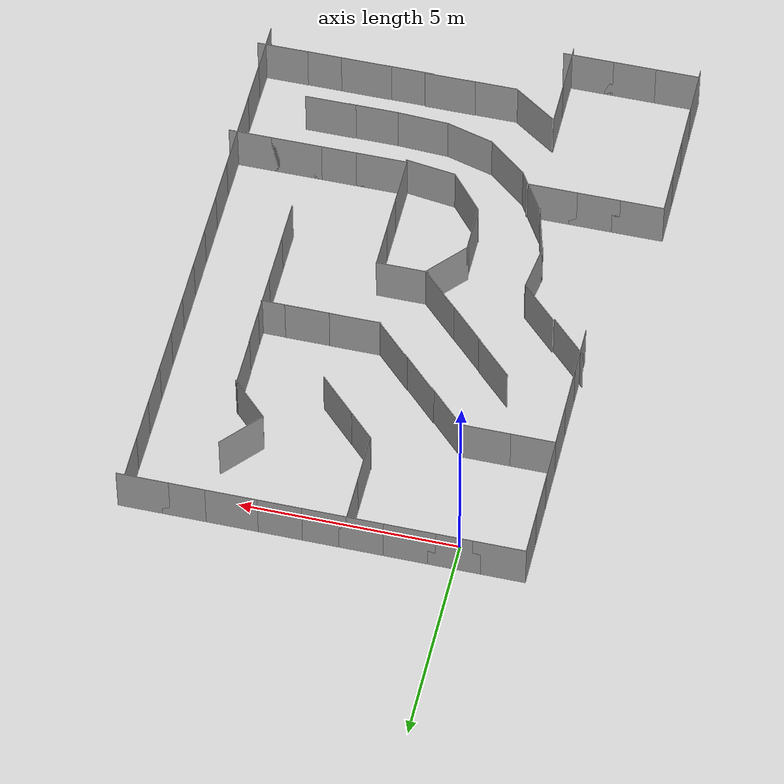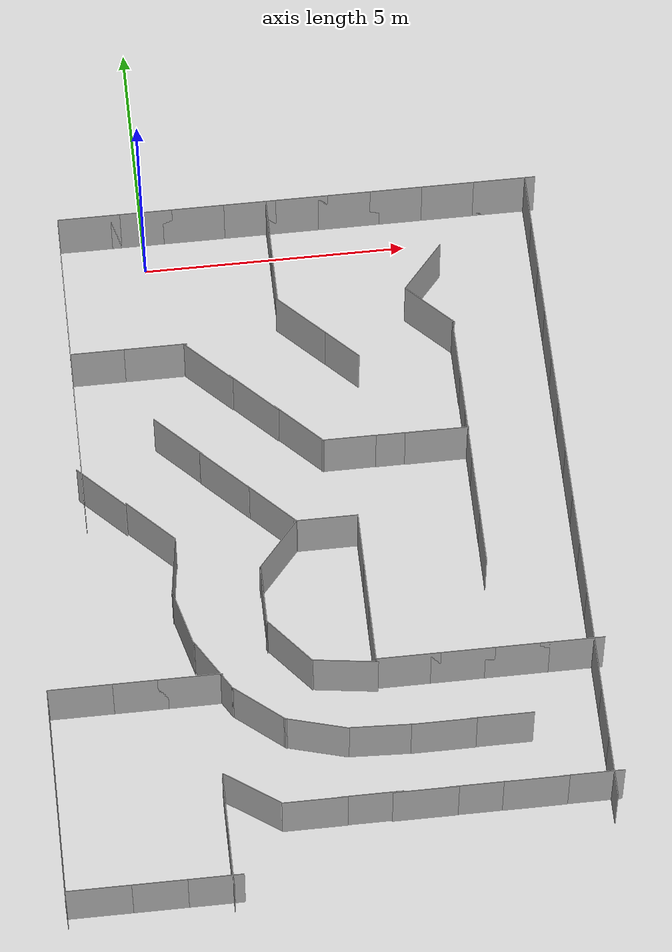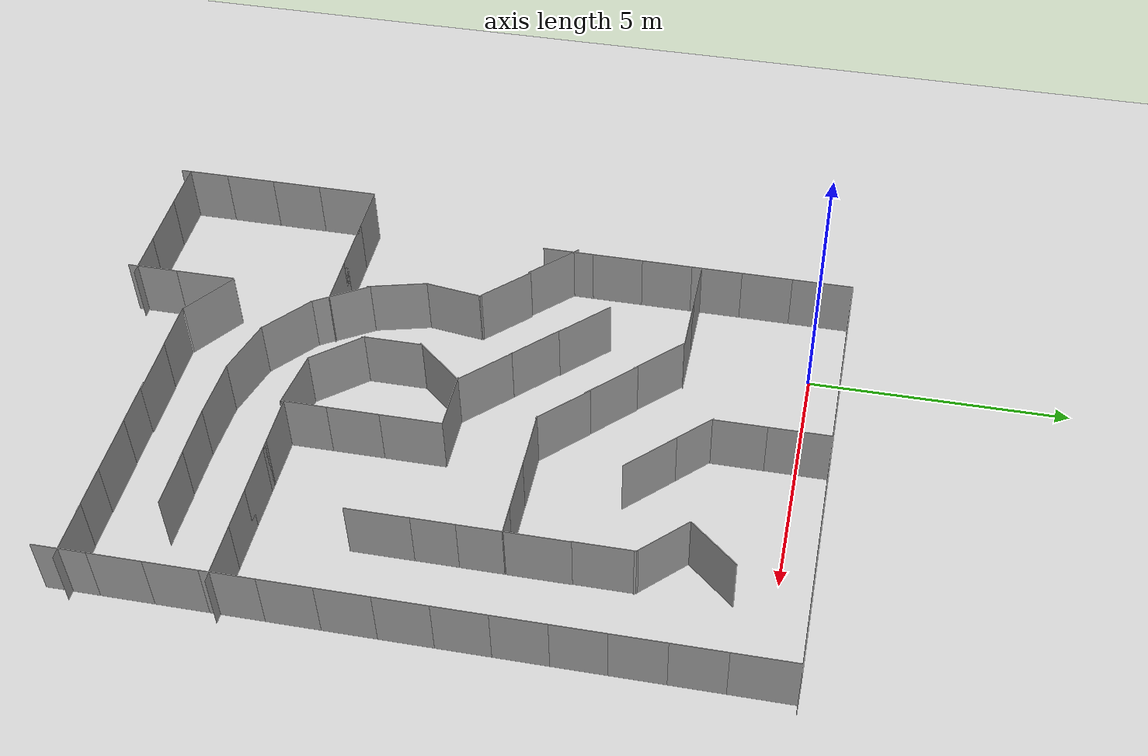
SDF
<sdf version="1.6">
 <world name="default">
  <light name="sun" type="directional">
   <pose>0 0 10 0 -0 0</pose>
   <diffuse>0.8 0.8 0.8 1</diffuse>
   <specular>0.2 0.2 0.2 1</specular>
   <attenuation>
    <range>1000</range>
    <constant>0.9</constant>
    <linear>0.01</linear>
    <quadratic>0.001</quadratic>
   </attenuation>
   <direction>-0.5 0.1 -0.9</direction>
  </light>
  <model name="ground_plane">
   <static>1</static>
   <link name="link">
    <collision name="collision">
     <geometry><plane><normal>0 0 1</normal><size>100 100</size></plane></geometry>
     <surface>
      <contact><collide_bitmask>65535</collide_bitmask></contact>
      <friction><ode><mu>100</mu><mu2>50</mu2></ode></friction>
     </surface>
    </collision>
    <visual name="visual">
     <cast_shadows>0</cast_shadows>
     <geometry><plane><normal>0 0 1</normal><size>100 100</size></plane></geometry>
     <material>
      <script><uri>file://media/materials/scripts/gazebo.material</uri><name>Gazebo/Grey</name></script>
     </material>
    </visual>
   </link>
  </model>
  <gravity>0 0 -9.8</gravity>
  <magnetic_field>6e-06 2.3e-05 -4.2e-05</magnetic_field>
  <atmosphere type="adiabatic"/>
  <physics name="default_physics" default="0" type="ode">
   <max_step_size>0.001</max_step_size>
   <real_time_factor>1</real_time_factor>
   <real_time_update_rate>1000</real_time_update_rate>
  </physics>
  <scene><ambient>0.4 0.4 0.4 1</ambient><background>0.7 0.7 0.7 1</background><shadows>1</shadows></scene>
  <audio><device>default</device></audio>
  <spherical_coordinates>
   <surface_model>EARTH_WGS84</surface_model>
   <latitude_deg>0</latitude_deg>
   <longitude_deg>0</longitude_deg>
   <elevation>0</elevation>
   <heading_deg>0</heading_deg>
  </spherical_coordinates>
  <model name="nist_maze_wall_120">
   <static>1</static>
   <link name="nist_maze_wall_120_link">
    <collision name="collision">
     <geometry>
      <mesh><uri>model://nist_maze_wall_120/meshes/nist_maze_wall_120.dae</uri><scale>1 1 1</scale></mesh>
     </geometry>
    </collision>
    <visual name="visual">
     <geometry>
      <mesh><uri>model://nist_maze_wall_120/meshes/nist_maze_wall_120.dae</uri><scale>1 1 1</scale></mesh>
     </geometry>
    </visual>
   </link>
   <pose>-1 0 0 0 -0 0</pose>
  </model>
  <model name="nist_maze_wall_120_clone">
   <static>1</static>
   <link name="nist_maze_wall_120_link">
    <collision name="collision">
     <geometry>
      <mesh><uri>model://nist_maze_wall_120/meshes/nist_maze_wall_120.dae</uri><scale>1 1 1</scale></mesh>
     </geometry>
    </collision>
    <visual name="visual">
     <geometry>
      <mesh><uri>model://nist_maze_wall_120/meshes/nist_maze_wall_120.dae</uri><scale>1 1 1</scale></mesh>
     </geometry>
    </visual>
   </link>
  </model>
  <model name="nist_maze_wall_120_clone_0">
   <static>1</static>
   <link name="nist_maze_wall_120_link">
    <collision name="collision">
     <geometry>
      <mesh><uri>model://nist_maze_wall_120/meshes/nist_maze_wall_120.dae</uri><scale>1 1 1</scale></mesh>
     </geometry>
    </collision>
    <visual name="visual">
     <geometry>
      <mesh><uri>model://nist_maze_wall_120/meshes/nist_maze_wall_120.dae</uri><scale>1 1 1</scale></mesh>
     </geometry>
    </visual>
   </link>
   <pose>1 0 0 0 -0 0</pose>
  </model>
  <model name="nist_maze_wall_120_clone_0_clone_2">
   <static>1</static>
   <link name="nist_maze_wall_120_link">
    <collision name="collision">
     <geometry>
      <mesh><uri>model://nist_maze_wall_120/meshes/nist_maze_wall_120.dae</uri><scale>1 1 1</scale></mesh>
     </geometry>
    </collision>
    <visual name="visual">
     <geometry>
      <mesh><uri>model://nist_maze_wall_120/meshes/nist_maze_wall_120.dae</uri><scale>1 1 1</scale></mesh>
     </geometry>
    </visual>
   </link>
   <pose>4 0 0 0 -0 0</pose>
  </model>
  <model name="nist_maze_wall_120_clone_0_clone_7">
   <static>1</static>
   <link name="nist_maze_wall_120_link">
    <collision name="collision">
     <geometry>
      <mesh><uri>model://nist_maze_wall_120/meshes/nist_maze_wall_120.dae</uri><scale>1 1 1</scale></mesh>
     </geometry>
    </collision>
    <visual name="visual">
     <geometry>
      <mesh><uri>model://nist_maze_wall_120/meshes/nist_maze_wall_120.dae</uri><scale>1 1 1</scale></mesh>
     </geometry>
    </visual>
   </link>
   <pose>5 0 0 0 -0 0</pose>
  </model>
  <model name="nist_maze_wall_120_clone_0_clone_8">
   <static>1</static>
   <link name="nist_maze_wall_120_link">
    <collision name="collision">
     <geometry>
      <mesh><uri>model://nist_maze_wall_120/meshes/nist_maze_wall_120.dae</uri><scale>1 1 1</scale></mesh>
     </geometry>
    </collision>
    <visual name="visual">
     <geometry>
      <mesh><uri>model://nist_maze_wall_120/meshes/nist_maze_wall_120.dae</uri><scale>1 1 1</scale></mesh>
     </geometry>
    </visual>
   </link>
   <pose>6 0 0 0 -0 0</pose>
  </model>
  <model name="nist_maze_wall_120_clone_0_clone_9">
   <static>1</static>
   <link name="nist_maze_wall_120_link">
    <collision name="collision">
     <geometry>
      <mesh><uri>model://nist_maze_wall_120/meshes/nist_maze_wall_120.dae</uri><scale>1 1 1</scale></mesh>
     </geometry>
    </collision>
    <visual name="visual">
     <geometry>
      <mesh><uri>model://nist_maze_wall_120/meshes/nist_maze_wall_120.dae</uri><scale>1 1 1</scale></mesh>
     </geometry>
    </visual>
   </link>
   <pose>2.36851 -2.42794 0 0 0 -0.785398</pose>
  </model>
  <model name="nist_maze_wall_120_clone_0_clone_0_clone">
   <static>1</static>
   <link name="nist_maze_wall_120_link">
    <collision name="collision">
     <geometry>
      <mesh><uri>model://nist_maze_wall_120/meshes/nist_maze_wall_120.dae</uri><scale>1 1 1</scale></mesh>
     </geometry>
    </collision>
    <visual name="visual">
     <geometry>
      <mesh><uri>model://nist_maze_wall_120/meshes/nist_maze_wall_120.dae</uri><scale>1 1 1</scale></mesh>
     </geometry>
    </visual>
   </link>
   <pose>2 0 0 0 -0 0</pose>
  </model>
  <model name="nist_maze_wall_120_clone_0_clone_8_clone">
   <static>1</static>
   <link name="nist_maze_wall_120_link">
    <collision name="collision">
     <geometry>
      <mesh><uri>model://nist_maze_wall_120/meshes/nist_maze_wall_120.dae</uri><scale>1 1 1</scale></mesh>
     </geometry>
    </collision>
    <visual name="visual">
     <geometry>
      <mesh><uri>model://nist_maze_wall_120/meshes/nist_maze_wall_120.dae</uri><scale>1 1 1</scale></mesh>
     </geometry>
    </visual>
   </link>
   <pose>3 -1 0 0 -0 1.5708</pose>
  </model>
  <model name="nist_maze_wall_120_clone_0_clone_8_clone_clone">
   <static>1</static>
   <link name="nist_maze_wall_120_link">
    <collision name="collision">
     <geometry>
      <mesh><uri>model://nist_maze_wall_120/meshes/nist_maze_wall_120.dae</uri><scale>1 1 1</scale></mesh>
     </geometry>
    </collision>
    <visual name="visual">
     <geometry>
      <mesh><uri>model://nist_maze_wall_120/meshes/nist_maze_wall_120.dae</uri><scale>1 1 1</scale></mesh>
     </geometry>
    </visual>
   </link>
   <pose>3 0 0 0 -0 1.5708</pose>
  </model>
  <model name="nist_maze_wall_120_clone_0_clone_8_clone_clone_0">
   <static>1</static>
   <link name="nist_maze_wall_120_link">
    <collision name="collision">
     <geometry>
      <mesh><uri>model://nist_maze_wall_120/meshes/nist_maze_wall_120.dae</uri><scale>1 1 1</scale></mesh>
     </geometry>
    </collision>
    <visual name="visual">
     <geometry>
      <mesh><uri>model://nist_maze_wall_120/meshes/nist_maze_wall_120.dae</uri><scale>1 1 1</scale></mesh>
     </geometry>
    </visual>
   </link>
   <pose>6.24673 -4.15515 0 0 -0 1.5708</pose>
  </model>
  <model name="nist_maze_wall_120_clone_0_clone_8_clone_clone_1">
   <static>1</static>
   <link name="nist_maze_wall_120_link">
    <collision name="collision">
     <geometry>
      <mesh><uri>model://nist_maze_wall_120/meshes/nist_maze_wall_120.dae</uri><scale>1 1 1</scale></mesh>
     </geometry>
    </collision>
    <visual name="visual">
     <geometry>
      <mesh><uri>model://nist_maze_wall_120/meshes/nist_maze_wall_120.dae</uri><scale>1 1 1</scale></mesh>
     </geometry>
    </visual>
   </link>
   <pose>6.2388 -3 0 0 -0 1.5708</pose>
  </model>
  <model name="nist_maze_wall_120_clone_0_clone_8_clone_clone_2">
   <static>1</static>
   <link name="nist_maze_wall_120_link">
    <collision name="collision">
     <geometry>
      <mesh><uri>model://nist_maze_wall_120/meshes/nist_maze_wall_120.dae</uri><scale>1 1 1</scale></mesh>
     </geometry>
    </collision>
    <visual name="visual">
     <geometry>
      <mesh><uri>model://nist_maze_wall_120/meshes/nist_maze_wall_120.dae</uri><scale>1 1 1</scale></mesh>
     </geometry>
    </visual>
   </link>
   <pose>8 -2 0 0 -0 1.5708</pose>
  </model>
  <model name="nist_maze_wall_120_clone_0_clone_8_clone_clone_3">
   <static>1</static>
   <link name="nist_maze_wall_120_link">
    <collision name="collision">
     <geometry>
      <mesh><uri>model://nist_maze_wall_120/meshes/nist_maze_wall_120.dae</uri><scale>1 1 1</scale></mesh>
     </geometry>
    </collision>
    <visual name="visual">
     <geometry>
      <mesh><uri>model://nist_maze_wall_120/meshes/nist_maze_wall_120.dae</uri><scale>1 1 1</scale></mesh>
     </geometry>
    </visual>
   </link>
   <pose>8 0 0 0 -0 1.5708</pose>
  </model>
  <model name="nist_maze_wall_120_clone_0_clone_8_clone_clone_4">
   <static>1</static>
   <link name="nist_maze_wall_120_link">
    <collision name="collision">
     <geometry>
      <mesh><uri>model://nist_maze_wall_120/meshes/nist_maze_wall_120.dae</uri><scale>1 1 1</scale></mesh>
     </geometry>
    </collision>
    <visual name="visual">
     <geometry>
      <mesh><uri>model://nist_maze_wall_120/meshes/nist_maze_wall_120.dae</uri><scale>1 1 1</scale></mesh>
     </geometry>
    </visual>
   </link>
   <pose>8 -1 0 0 -0 1.5708</pose>
  </model>
  <model name="nist_maze_wall_120_clone_0_clone_8_clone_clone_5">
   <static>1</static>
   <link name="nist_maze_wall_120_link">
    <collision name="collision">
     <geometry>
      <mesh><uri>model://nist_maze_wall_120/meshes/nist_maze_wall_120.dae</uri><scale>1 1 1</scale></mesh>
     </geometry>
    </collision>
    <visual name="visual">
     <geometry>
      <mesh><uri>model://nist_maze_wall_120/meshes/nist_maze_wall_120.dae</uri><scale>1 1 1</scale></mesh>
     </geometry>
    </visual>
   </link>
   <pose>8 -4 0 0 -0 1.5708</pose>
  </model>
  <model name="nist_maze_wall_120_clone_0_clone_8_clone_clone_6">
   <static>1</static>
   <link name="nist_maze_wall_120_link">
    <collision name="collision">
     <geometry>
      <mesh><uri>model://nist_maze_wall_120/meshes/nist_maze_wall_120.dae</uri><scale>1 1 1</scale></mesh>
     </geometry>
    </collision>
    <visual name="visual">
     <geometry>
      <mesh><uri>model://nist_maze_wall_120/meshes/nist_maze_wall_120.dae</uri><scale>1 1 1</scale></mesh>
     </geometry>
    </visual>
   </link>
   <pose>-1 0 0 0 -0 1.5708</pose>
  </model>
  <model name="nist_maze_wall_120_clone_0_clone_8_clone_clone_7">
   <static>1</static>
   <link name="nist_maze_wall_120_link">
    <collision name="collision">
     <geometry>
      <mesh><uri>model://nist_maze_wall_120/meshes/nist_maze_wall_120.dae</uri><scale>1 1 1</scale></mesh>
     </geometry>
    </collision>
    <visual name="visual">
     <geometry>
      <mesh><uri>model://nist_maze_wall_120/meshes/nist_maze_wall_120.dae</uri><scale>1 1 1</scale></mesh>
     </geometry>
    </visual>
   </link>
   <pose>-1 -1 0 0 -0 1.5708</pose>
  </model>
  <model name="nist_maze_wall_120_clone_0_clone_8_clone_clone_11">
   <static>1</static>
   <link name="nist_maze_wall_120_link">
    <collision name="collision">
     <geometry>
      <mesh><uri>model://nist_maze_wall_120/meshes/nist_maze_wall_120.dae</uri><scale>1 1 1</scale></mesh>
     </geometry>
    </collision>
    <visual name="visual">
     <geometry>
      <mesh><uri>model://nist_maze_wall_120/meshes/nist_maze_wall_120.dae</uri><scale>1 1 1</scale></mesh>
     </geometry>
    </visual>
   </link>
   <pose>-1 -2 0 0 -0 1.5708</pose>
  </model>
  <model name="nist_maze_wall_120_clone_1">
   <static>1</static>
   <link name="nist_maze_wall_120_link">
    <collision name="collision">
     <geometry>
      <mesh><uri>model://nist_maze_wall_120/meshes/nist_maze_wall_120.dae</uri><scale>1 1 1</scale></mesh>
     </geometry>
    </collision>
    <visual name="visual">
     <geometry>
      <mesh><uri>model://nist_maze_wall_120/meshes/nist_maze_wall_120.dae</uri><scale>1 1 1</scale></mesh>
     </geometry>
    </visual>
   </link>
   <pose>-1 -3 0 0 -0 0</pose>
  </model>
  <model name="nist_maze_wall_120_clone_2">
   <static>1</static>
   <link name="nist_maze_wall_120_link">
    <collision name="collision">
     <geometry>
      <mesh><uri>model://nist_maze_wall_120/meshes/nist_maze_wall_120.dae</uri><scale>1 1 1</scale></mesh>
     </geometry>
    </collision>
    <visual name="visual">
     <geometry>
      <mesh><uri>model://nist_maze_wall_120/meshes/nist_maze_wall_120.dae</uri><scale>1 1 1</scale></mesh>
     </geometry>
    </visual>
   </link>
   <pose>0 -3 0 0 -0 0</pose>
  </model>
  <model name="nist_maze_wall_120_clone_3">
   <static>1</static>
   <link name="nist_maze_wall_120_link">
    <collision name="collision">
     <geometry>
      <mesh><uri>model://nist_maze_wall_120/meshes/nist_maze_wall_120.dae</uri><scale>1 1 1</scale></mesh>
     </geometry>
    </collision>
    <visual name="visual">
     <geometry>
      <mesh><uri>model://nist_maze_wall_120/meshes/nist_maze_wall_120.dae</uri><scale>1 1 1</scale></mesh>
     </geometry>
    </visual>
   </link>
   <pose>3.49655 -5.35182 0 0 -0 0</pose>
  </model>
  <model name="nist_maze_wall_120_clone_4">
   <static>1</static>
   <link name="nist_maze_wall_120_link">
    <collision name="collision">
     <geometry>
      <mesh><uri>model://nist_maze_wall_120/meshes/nist_maze_wall_120.dae</uri><scale>1 1 1</scale></mesh>
     </geometry>
    </collision>
    <visual name="visual">
     <geometry>
      <mesh><uri>model://nist_maze_wall_120/meshes/nist_maze_wall_120.dae</uri><scale>1 1 1</scale></mesh>
     </geometry>
    </visual>
   </link>
   <pose>5.06837 -5.36174 0 0 -0 0</pose>
  </model>
  <model name="nist_maze_wall_120_clone_5">
   <static>1</static>
   <link name="nist_maze_wall_120_link">
    <collision name="collision">
     <geometry>
      <mesh><uri>model://nist_maze_wall_120/meshes/nist_maze_wall_120.dae</uri><scale>1 1 1</scale></mesh>
     </geometry>
    </collision>
    <visual name="visual">
     <geometry>
      <mesh><uri>model://nist_maze_wall_120/meshes/nist_maze_wall_120.dae</uri><scale>1 1 1</scale></mesh>
     </geometry>
    </visual>
   </link>
   <pose>5.67552 -1.56373 0 0 -0 0.859737</pose>
  </model>
  <model name="nist_maze_wall_120_clone_6">
   <static>1</static>
   <link name="nist_maze_wall_120_link">
    <collision name="collision">
     <geometry>
      <mesh><uri>model://nist_maze_wall_120/meshes/nist_maze_wall_120.dae</uri><scale>1 1 1</scale></mesh>
     </geometry>
    </collision>
    <visual name="visual">
     <geometry>
      <mesh><uri>model://nist_maze_wall_120/meshes/nist_maze_wall_120.dae</uri><scale>1 1 1</scale></mesh>
     </geometry>
    </visual>
   </link>
   <pose>3 0 0 0 -0 0</pose>
  </model>
  <model name="nist_maze_wall_120_clone_7">
   <static>1</static>
   <link name="nist_maze_wall_120_link">
    <collision name="collision">
     <geometry>
      <mesh><uri>model://nist_maze_wall_120/meshes/nist_maze_wall_120.dae</uri><scale>1 1 1</scale></mesh>
     </geometry>
    </collision>
    <visual name="visual">
     <geometry>
      <mesh><uri>model://nist_maze_wall_120/meshes/nist_maze_wall_120.dae</uri><scale>1 1 1</scale></mesh>
     </geometry>
    </visual>
   </link>
   <pose>4.52175 -5.3564 0 0 -0 0</pose>
  </model>
  <model name="nist_maze_wall_120_clone_0_clone_9_clone">
   <static>1</static>
   <link name="nist_maze_wall_120_link">
    <collision name="collision">
     <geometry>
      <mesh><uri>model://nist_maze_wall_120/meshes/nist_maze_wall_120.dae</uri><scale>1 1 1</scale></mesh>
     </geometry>
    </collision>
    <visual name="visual">
     <geometry>
      <mesh><uri>model://nist_maze_wall_120/meshes/nist_maze_wall_120.dae</uri><scale>1 1 1</scale></mesh>
     </geometry>
    </visual>
   </link>
   <pose>2.95445 -3.01156 0 0 0 -0.785398</pose>
  </model>
  <model name="nist_maze_wall_120_clone_0_clone_9_clone_0">
   <static>1</static>
   <link name="nist_maze_wall_120_link">
    <collision name="collision">
     <geometry>
      <mesh><uri>model://nist_maze_wall_120/meshes/nist_maze_wall_120.dae</uri><scale>1 1 1</scale></mesh>
     </geometry>
    </collision>
    <visual name="visual">
     <geometry>
      <mesh><uri>model://nist_maze_wall_120/meshes/nist_maze_wall_120.dae</uri><scale>1 1 1</scale></mesh>
     </geometry>
    </visual>
   </link>
   <pose>0.538359 -3.24676 0 0 0 -0.785398</pose>
  </model>
  <model name="nist_maze_wall_120_clone_0_clone_9_clone_1">
   <static>1</static>
   <link name="nist_maze_wall_120_link">
    <collision name="collision">
     <geometry>
      <mesh><uri>model://nist_maze_wall_120/meshes/nist_maze_wall_120.dae</uri><scale>1 1 1</scale></mesh>
     </geometry>
    </collision>
    <visual name="visual">
     <geometry>
      <mesh><uri>model://nist_maze_wall_120/meshes/nist_maze_wall_120.dae</uri><scale>1 1 1</scale></mesh>
     </geometry>
    </visual>
   </link>
   <pose>1.32503 -4.012 0 0 0 -0.785398</pose>
  </model>
  <model name="nist_maze_wall_120_clone_0_clone_9_clone_2">
   <static>1</static>
   <link name="nist_maze_wall_120_link">
    <collision name="collision">
     <geometry>
      <mesh><uri>model://nist_maze_wall_120/meshes/nist_maze_wall_120.dae</uri><scale>1 1 1</scale></mesh>
     </geometry>
    </collision>
    <visual name="visual">
     <geometry>
      <mesh><uri>model://nist_maze_wall_120/meshes/nist_maze_wall_120.dae</uri><scale>1 1 1</scale></mesh>
     </geometry>
    </visual>
   </link>
   <pose>2.09964 -4.76804 0 0 0 -0.785398</pose>
  </model>
  <model name="nist_maze_wall_120_clone_0_clone_8_clone_0">
   <static>1</static>
   <link name="nist_maze_wall_120_link">
    <collision name="collision">
     <geometry>
      <mesh><uri>model://nist_maze_wall_120/meshes/nist_maze_wall_120.dae</uri><scale>1 1 1</scale></mesh>
     </geometry>
    </collision>
    <visual name="visual">
     <geometry>
      <mesh><uri>model://nist_maze_wall_120/meshes/nist_maze_wall_120.dae</uri><scale>1 1 1</scale></mesh>
     </geometry>
    </visual>
   </link>
   <pose>7 0 0 0 -0 0</pose>
  </model>
  <model name="nist_maze_wall_120_clone_0_clone_8_clone_clone_2_clone">
   <static>1</static>
   <link name="nist_maze_wall_120_link">
    <collision name="collision">
     <geometry>
      <mesh><uri>model://nist_maze_wall_120/meshes/nist_maze_wall_120.dae</uri><scale>1 1 1</scale></mesh>
     </geometry>
    </collision>
    <visual name="visual">
     <geometry>
      <mesh><uri>model://nist_maze_wall_120/meshes/nist_maze_wall_120.dae</uri><scale>1 1 1</scale></mesh>
     </geometry>
    </visual>
   </link>
   <pose>8 -3 0 0 -0 1.5708</pose>
  </model>
  <model name="nist_maze_wall_120_clone_0_clone_9_clone_clone">
   <static>1</static>
   <link name="nist_maze_wall_120_link">
    <collision name="collision">
     <geometry>
      <mesh><uri>model://nist_maze_wall_120/meshes/nist_maze_wall_120.dae</uri><scale>1 1 1</scale></mesh>
     </geometry>
    </collision>
    <visual name="visual">
     <geometry>
      <mesh><uri>model://nist_maze_wall_120/meshes/nist_maze_wall_120.dae</uri><scale>1 1 1</scale></mesh>
     </geometry>
    </visual>
   </link>
   <pose>4.82694 -2.46879 0 0 0 -0.785398</pose>
  </model>
  <model name="nist_maze_wall_120_clone_0_clone_8_clone_clone_5_clone">
   <static>1</static>
   <link name="nist_maze_wall_120_link">
    <collision name="collision">
     <geometry>
      <mesh><uri>model://nist_maze_wall_120/meshes/nist_maze_wall_120.dae</uri><scale>1 1 1</scale></mesh>
     </geometry>
    </collision>
    <visual name="visual">
     <geometry>
      <mesh><uri>model://nist_maze_wall_120/meshes/nist_maze_wall_120.dae</uri><scale>1 1 1</scale></mesh>
     </geometry>
    </visual>
   </link>
   <pose>8 -5 0 0 -0 1.5708</pose>
  </model>
  <model name="nist_maze_wall_120_clone_0_clone_8_clone_clone_5_clone_0">
   <static>1</static>
   <link name="nist_maze_wall_120_link">
    <collision name="collision">
     <geometry>
      <mesh><uri>model://nist_maze_wall_120/meshes/nist_maze_wall_120.dae</uri><scale>1 1 1</scale></mesh>
     </geometry>
    </collision>
    <visual name="visual">
     <geometry>
      <mesh><uri>model://nist_maze_wall_120/meshes/nist_maze_wall_120.dae</uri><scale>1 1 1</scale></mesh>
     </geometry>
    </visual>
   </link>
   <pose>8 -6 0 0 -0 1.5708</pose>
  </model>
  <model name="nist_maze_wall_120_clone_0_clone_8_clone_clone_5_clone_1">
   <static>1</static>
   <link name="nist_maze_wall_120_link">
    <collision name="collision">
     <geometry>
      <mesh><uri>model://nist_maze_wall_120/meshes/nist_maze_wall_120.dae</uri><scale>1 1 1</scale></mesh>
     </geometry>
    </collision>
    <visual name="visual">
     <geometry>
      <mesh><uri>model://nist_maze_wall_120/meshes/nist_maze_wall_120.dae</uri><scale>1 1 1</scale></mesh>
     </geometry>
    </visual>
   </link>
   <pose>8 -7 0 0 -0 1.5708</pose>
  </model>
  <model name="nist_maze_wall_120_clone_0_clone_8_clone_clone_5_clone_2">
   <static>1</static>
   <link name="nist_maze_wall_120_link">
    <collision name="collision">
     <geometry>
      <mesh><uri>model://nist_maze_wall_120/meshes/nist_maze_wall_120.dae</uri><scale>1 1 1</scale></mesh>
     </geometry>
    </collision>
    <visual name="visual">
     <geometry>
      <mesh><uri>model://nist_maze_wall_120/meshes/nist_maze_wall_120.dae</uri><scale>1 1 1</scale></mesh>
     </geometry>
    </visual>
   </link>
   <pose>8 -8 0 0 -0 1.5708</pose>
  </model>
  <model name="nist_maze_wall_120_clone_0_clone_8_clone_clone_5_clone_3">
   <static>1</static>
   <link name="nist_maze_wall_120_link">
    <collision name="collision">
     <geometry>
      <mesh><uri>model://nist_maze_wall_120/meshes/nist_maze_wall_120.dae</uri><scale>1 1 1</scale></mesh>
     </geometry>
    </collision>
    <visual name="visual">
     <geometry>
      <mesh><uri>model://nist_maze_wall_120/meshes/nist_maze_wall_120.dae</uri><scale>1 1 1</scale></mesh>
     </geometry>
    </visual>
   </link>
   <pose>8 -9 0 0 -0 1.5708</pose>
  </model>
  <model name="nist_maze_wall_120_clone_0_clone_8_clone_clone_5_clone_4">
   <static>1</static>
   <link name="nist_maze_wall_120_link">
    <collision name="collision">
     <geometry>
      <mesh><uri>model://nist_maze_wall_120/meshes/nist_maze_wall_120.dae</uri><scale>1 1 1</scale></mesh>
     </geometry>
    </collision>
    <visual name="visual">
     <geometry>
      <mesh><uri>model://nist_maze_wall_120/meshes/nist_maze_wall_120.dae</uri><scale>1 1 1</scale></mesh>
     </geometry>
    </visual>
   </link>
   <pose>6.245 -5 0 0 -0 1.5708</pose>
  </model>
  <model name="nist_maze_wall_120_clone_0_clone_8_clone_clone_5_clone_5">
   <static>1</static>
   <link name="nist_maze_wall_120_link">
    <collision name="collision">
     <geometry>
      <mesh><uri>model://nist_maze_wall_120/meshes/nist_maze_wall_120.dae</uri><scale>1 1 1</scale></mesh>
     </geometry>
    </collision>
    <visual name="visual">
     <geometry>
      <mesh><uri>model://nist_maze_wall_120/meshes/nist_maze_wall_120.dae</uri><scale>1 1 1</scale></mesh>
     </geometry>
    </visual>
   </link>
   <pose>6.2446 -6 0 0 -0 1.5708</pose>
  </model>
  <model name="nist_maze_wall_120_clone_0_clone_8_clone_clone_5_clone_6">
   <static>1</static>
   <link name="nist_maze_wall_120_link">
    <collision name="collision">
     <geometry>
      <mesh><uri>model://nist_maze_wall_120/meshes/nist_maze_wall_120.dae</uri><scale>1 1 1</scale></mesh>
     </geometry>
    </collision>
    <visual name="visual">
     <geometry>
      <mesh><uri>model://nist_maze_wall_120/meshes/nist_maze_wall_120.dae</uri><scale>1 1 1</scale></mesh>
     </geometry>
    </visual>
   </link>
   <pose>6.24737 -7 0 0 -0 1.5708</pose>
  </model>
  <model name="nist_maze_wall_120_clone_7_clone">
   <static>1</static>
   <link name="nist_maze_wall_120_link">
    <collision name="collision">
     <geometry>
      <mesh><uri>model://nist_maze_wall_120/meshes/nist_maze_wall_120.dae</uri><scale>1 1 1</scale></mesh>
     </geometry>
    </collision>
    <visual name="visual">
     <geometry>
      <mesh><uri>model://nist_maze_wall_120/meshes/nist_maze_wall_120.dae</uri><scale>1 1 1</scale></mesh>
     </geometry>
    </visual>
   </link>
   <pose>7 -10 0 0 -0 0</pose>
  </model>
  <model name="nist_maze_wall_120_clone_7_clone_0">
   <static>1</static>
   <link name="nist_maze_wall_120_link">
    <collision name="collision">
     <geometry>
      <mesh><uri>model://nist_maze_wall_120/meshes/nist_maze_wall_120.dae</uri><scale>1 1 1</scale></mesh>
     </geometry>
    </collision>
    <visual name="visual">
     <geometry>
      <mesh><uri>model://nist_maze_wall_120/meshes/nist_maze_wall_120.dae</uri><scale>1 1 1</scale></mesh>
     </geometry>
    </visual>
   </link>
   <pose>6 -10 0 0 -0 0</pose>
  </model>
  <model name="nist_maze_wall_120_clone_7_clone_1">
   <static>1</static>
   <link name="nist_maze_wall_120_link">
    <collision name="collision">
     <geometry>
      <mesh><uri>model://nist_maze_wall_120/meshes/nist_maze_wall_120.dae</uri><scale>1 1 1</scale></mesh>
     </geometry>
    </collision>
    <visual name="visual">
     <geometry>
      <mesh><uri>model://nist_maze_wall_120/meshes/nist_maze_wall_120.dae</uri><scale>1 1 1</scale></mesh>
     </geometry>
    </visual>
   </link>
   <pose>5 -10 0 0 -0 0</pose>
  </model>
  <model name="nist_maze_wall_120_clone_7_clone_2">
   <static>1</static>
   <link name="nist_maze_wall_120_link">
    <collision name="collision">
     <geometry>
      <mesh><uri>model://nist_maze_wall_120/meshes/nist_maze_wall_120.dae</uri><scale>1 1 1</scale></mesh>
     </geometry>
    </collision>
    <visual name="visual">
     <geometry>
      <mesh><uri>model://nist_maze_wall_120/meshes/nist_maze_wall_120.dae</uri><scale>1 1 1</scale></mesh>
     </geometry>
    </visual>
   </link>
   <pose>4 -10 0 0 -0 0</pose>
  </model>
  <model name="nist_maze_wall_120_clone_0_clone_8_clone_clone_5_clone_6_clone">
   <static>1</static>
   <link name="nist_maze_wall_120_link">
    <collision name="collision">
     <geometry>
      <mesh><uri>model://nist_maze_wall_120/meshes/nist_maze_wall_120.dae</uri><scale>1 1 1</scale></mesh>
     </geometry>
    </collision>
    <visual name="visual">
     <geometry>
      <mesh><uri>model://nist_maze_wall_120/meshes/nist_maze_wall_120.dae</uri><scale>1 1 1</scale></mesh>
     </geometry>
    </visual>
   </link>
   <pose>4 -8.85445 0 0 -0 1.5708</pose>
  </model>
  <model name="nist_maze_wall_120_clone_0_clone_8_clone_clone_5_clone_6_clone_0">
   <static>1</static>
   <link name="nist_maze_wall_120_link">
    <collision name="collision">
     <geometry>
      <mesh><uri>model://nist_maze_wall_120/meshes/nist_maze_wall_120.dae</uri><scale>1 1 1</scale></mesh>
     </geometry>
    </collision>
    <visual name="visual">
     <geometry>
      <mesh><uri>model://nist_maze_wall_120/meshes/nist_maze_wall_120.dae</uri><scale>1 1 1</scale></mesh>
     </geometry>
    </visual>
   </link>
   <pose>4 -8 0 0 -0 1.5708</pose>
  </model>
  <model name="nist_maze_wall_120_clone_0_clone_8_clone_clone_5_clone_6_clone_1">
   <static>1</static>
   <link name="nist_maze_wall_120_link">
    <collision name="collision">
     <geometry>
      <mesh><uri>model://nist_maze_wall_120/meshes/nist_maze_wall_120.dae</uri><scale>1 1 1</scale></mesh>
     </geometry>
    </collision>
    <visual name="visual">
     <geometry>
      <mesh><uri>model://nist_maze_wall_120/meshes/nist_maze_wall_120.dae</uri><scale>1 1 1</scale></mesh>
     </geometry>
    </visual>
   </link>
   <pose>4 -7 0 0 -0 1.5708</pose>
  </model>
  <model name="nist_maze_wall_120_clone_0_clone_8_clone_clone_5_clone_6_clone_2">
   <static>1</static>
   <link name="nist_maze_wall_120_link">
    <collision name="collision">
     <geometry>
      <mesh><uri>model://nist_maze_wall_120/meshes/nist_maze_wall_120.dae</uri><scale>1 1 1</scale></mesh>
     </geometry>
    </collision>
    <visual name="visual">
     <geometry>
      <mesh><uri>model://nist_maze_wall_120/meshes/nist_maze_wall_120.dae</uri><scale>1 1 1</scale></mesh>
     </geometry>
    </visual>
   </link>
   <pose>-1 -3 0 0 -0 1.5708</pose>
  </model>
  <model name="nist_maze_wall_120_clone_0_clone_8_clone_clone_5_clone_6_clone_3">
   <static>1</static>
   <link name="nist_maze_wall_120_link">
    <collision name="collision">
     <geometry>
      <mesh><uri>model://nist_maze_wall_120/meshes/nist_maze_wall_120.dae</uri><scale>1 1 1</scale></mesh>
     </geometry>
    </collision>
    <visual name="visual">
     <geometry>
      <mesh><uri>model://nist_maze_wall_120/meshes/nist_maze_wall_120.dae</uri><scale>1 1 1</scale></mesh>
     </geometry>
    </visual>
   </link>
   <pose>-1 -4 0 0 -0 1.5708</pose>
  </model>
  <model name="nist_maze_wall_120_clone_0_clone_8_clone_clone_5_clone_6_clone_4">
   <static>1</static>
   <link name="nist_maze_wall_120_link">
    <collision name="collision">
     <geometry>
      <mesh><uri>model://nist_maze_wall_120/meshes/nist_maze_wall_120.dae</uri><scale>1 1 1</scale></mesh>
     </geometry>
    </collision>
    <visual name="visual">
     <geometry>
      <mesh><uri>model://nist_maze_wall_120/meshes/nist_maze_wall_120.dae</uri><scale>1 1 1</scale></mesh>
     </geometry>
    </visual>
   </link>
   <pose>-1 -5 0 0 -0 1.5708</pose>
  </model>
  <model name="nist_maze_wall_120_clone_3_clone">
   <static>1</static>
   <link name="nist_maze_wall_120_link">
    <collision name="collision">
     <geometry>
      <mesh><uri>model://nist_maze_wall_120/meshes/nist_maze_wall_120.dae</uri><scale>1 1 1</scale></mesh>
     </geometry>
    </collision>
    <visual name="visual">
     <geometry>
      <mesh><uri>model://nist_maze_wall_120/meshes/nist_maze_wall_120.dae</uri><scale>1 1 1</scale></mesh>
     </geometry>
    </visual>
   </link>
   <pose>2.80885 -7 0 0 -0 0</pose>
  </model>
  <model name="nist_maze_wall_120_clone_0_clone_9_clone_2_clone">
   <static>1</static>
   <link name="nist_maze_wall_120_link">
    <collision name="collision">
     <geometry>
      <mesh><uri>model://nist_maze_wall_120/meshes/nist_maze_wall_120.dae</uri><scale>1 1 1</scale></mesh>
     </geometry>
    </collision>
    <visual name="visual">
     <geometry>
      <mesh><uri>model://nist_maze_wall_120/meshes/nist_maze_wall_120.dae</uri><scale>1 1 1</scale></mesh>
     </geometry>
    </visual>
   </link>
   <pose>1.42168 -6.40993 0 0 0 -0.785398</pose>
  </model>
  <model name="nist_maze_wall_120_clone_0_clone_9_clone_2_clone_0">
   <static>1</static>
   <link name="nist_maze_wall_120_link">
    <collision name="collision">
     <geometry>
      <mesh><uri>model://nist_maze_wall_120/meshes/nist_maze_wall_120.dae</uri><scale>1 1 1</scale></mesh>
     </geometry>
    </collision>
    <visual name="visual">
     <geometry>
      <mesh><uri>model://nist_maze_wall_120/meshes/nist_maze_wall_120.dae</uri><scale>1 1 1</scale></mesh>
     </geometry>
    </visual>
   </link>
   <pose>0.613898 -5.6077 0 0 0 -0.785398</pose>
  </model>
  <model name="nist_maze_wall_120_clone_0_clone_9_clone_2_clone_1">
   <static>1</static>
   <link name="nist_maze_wall_120_link">
    <collision name="collision">
     <geometry>
      <mesh><uri>model://nist_maze_wall_120/meshes/nist_maze_wall_120.dae</uri><scale>1 1 1</scale></mesh>
     </geometry>
    </collision>
    <visual name="visual">
     <geometry>
      <mesh><uri>model://nist_maze_wall_120/meshes/nist_maze_wall_120.dae</uri><scale>1 1 1</scale></mesh>
     </geometry>
    </visual>
   </link>
   <pose>-0.170834 -4.81042 0 0 0 -0.785398</pose>
  </model>
  <model name="nist_maze_wall_120_clone_5_clone">
   <static>1</static>
   <link name="nist_maze_wall_120_link">
    <collision name="collision">
     <geometry>
      <mesh><uri>model://nist_maze_wall_120/meshes/nist_maze_wall_120.dae</uri><scale>1 1 1</scale></mesh>
     </geometry>
    </collision>
    <visual name="visual">
     <geometry>
      <mesh><uri>model://nist_maze_wall_120/meshes/nist_maze_wall_120.dae</uri><scale>1 1 1</scale></mesh>
     </geometry>
    </visual>
   </link>
   <pose>2.32285 -7.25423 0 0 -0 0.859737</pose>
  </model>
  <model name="nist_maze_wall_120_clone_5_clone_0">
   <static>1</static>
   <link name="nist_maze_wall_120_link">
    <collision name="collision">
     <geometry>
      <mesh><uri>model://nist_maze_wall_120/meshes/nist_maze_wall_120.dae</uri><scale>1 1 1</scale></mesh>
     </geometry>
    </collision>
    <visual name="visual">
     <geometry>
      <mesh><uri>model://nist_maze_wall_120/meshes/nist_maze_wall_120.dae</uri><scale>1 1 1</scale></mesh>
     </geometry>
    </visual>
   </link>
   <pose>0.510403 -7.16893 0 0 -0 1.4342</pose>
  </model>
  <model name="nist_maze_wall_120_clone_0_clone_9_clone_2_clone_1_clone">
   <static>1</static>
   <link name="nist_maze_wall_120_link">
    <collision name="collision">
     <geometry>
      <mesh><uri>model://nist_maze_wall_120/meshes/nist_maze_wall_120.dae</uri><scale>1 1 1</scale></mesh>
     </geometry>
    </collision>
    <visual name="visual">
     <geometry>
      <mesh><uri>model://nist_maze_wall_120/meshes/nist_maze_wall_120.dae</uri><scale>1 1 1</scale></mesh>
     </geometry>
    </visual>
   </link>
   <pose>-1.69028 -5.7396 0 0 0 -0.785398</pose>
  </model>
  <model name="nist_maze_wall_120_clone_0_clone_9_clone_2_clone_1_clone_0">
   <static>1</static>
   <link name="nist_maze_wall_120_link">
    <collision name="collision">
     <geometry>
      <mesh><uri>model://nist_maze_wall_120/meshes/nist_maze_wall_120.dae</uri><scale>1 1 1</scale></mesh>
     </geometry>
    </collision>
    <visual name="visual">
     <geometry>
      <mesh><uri>model://nist_maze_wall_120/meshes/nist_maze_wall_120.dae</uri><scale>1 1 1</scale></mesh>
     </geometry>
    </visual>
   </link>
   <pose>-0.839871 -6.54271 0 0 0 -0.785398</pose>
  </model>
  <model name="nist_maze_wall_120_clone_0_clone_8_clone_clone_5_clone_6_clone_3_clone_0">
   <static>1</static>
   <link name="nist_maze_wall_120_link">
    <collision name="collision">
     <geometry>
      <mesh><uri>model://nist_maze_wall_120/meshes/nist_maze_wall_120.dae</uri><scale>1 1 1</scale></mesh>
     </geometry>
    </collision>
    <visual name="visual">
     <geometry>
      <mesh><uri>model://nist_maze_wall_120/meshes/nist_maze_wall_120.dae</uri><scale>1 1 1</scale></mesh>
     </geometry>
    </visual>
   </link>
   <pose>2.10658 -7.87085 0 0 -0 1.5708</pose>
  </model>
  <model name="nist_maze_wall_120_clone_0_clone_8_clone_clone_5_clone_6_clone_3_clone_1">
   <static>1</static>
   <link name="nist_maze_wall_120_link">
    <collision name="collision">
     <geometry>
      <mesh><uri>model://nist_maze_wall_120/meshes/nist_maze_wall_120.dae</uri><scale>1 1 1</scale></mesh>
     </geometry>
    </collision>
    <visual name="visual">
     <geometry>
      <mesh><uri>model://nist_maze_wall_120/meshes/nist_maze_wall_120.dae</uri><scale>1 1 1</scale></mesh>
     </geometry>
    </visual>
   </link>
   <pose>2.33228 -8.47007 0 0 -0 2.26876</pose>
  </model>
  <model name="nist_maze_wall_120_clone_0_clone_8_clone_clone_5_clone_6_clone_3_clone_2">
   <static>1</static>
   <link name="nist_maze_wall_120_link">
    <collision name="collision">
     <geometry>
      <mesh><uri>model://nist_maze_wall_120/meshes/nist_maze_wall_120.dae</uri><scale>1 1 1</scale></mesh>
     </geometry>
    </collision>
    <visual name="visual">
     <geometry>
      <mesh><uri>model://nist_maze_wall_120/meshes/nist_maze_wall_120.dae</uri><scale>1 1 1</scale></mesh>
     </geometry>
    </visual>
   </link>
   <pose>2.92579 -8.78641 0 0 -0 3.00495</pose>
  </model>
  <model name="nist_maze_wall_120_clone_0_clone_8_clone_clone_5_clone_6_clone_3_clone_3">
   <static>1</static>
   <link name="nist_maze_wall_120_link">
    <collision name="collision">
     <geometry>
      <mesh><uri>model://nist_maze_wall_120/meshes/nist_maze_wall_120.dae</uri><scale>1 1 1</scale></mesh>
     </geometry>
    </collision>
    <visual name="visual">
     <geometry>
      <mesh><uri>model://nist_maze_wall_120/meshes/nist_maze_wall_120.dae</uri><scale>1 1 1</scale></mesh>
     </geometry>
    </visual>
   </link>
   <pose>0.569683 -8.03484 0 0 -0 1.8295</pose>
  </model>
  <model name="nist_maze_wall_120_clone_0_clone_8_clone_clone_5_clone_6_clone_3_clone_4">
   <static>1</static>
   <link name="nist_maze_wall_120_link">
    <collision name="collision">
     <geometry>
      <mesh><uri>model://nist_maze_wall_120/meshes/nist_maze_wall_120.dae</uri><scale>1 1 1</scale></mesh>
     </geometry>
    </collision>
    <visual name="visual">
     <geometry>
      <mesh><uri>model://nist_maze_wall_120/meshes/nist_maze_wall_120.dae</uri><scale>1 1 1</scale></mesh>
     </geometry>
    </visual>
   </link>
   <pose>-2 -10 0 0 -0 1.5708</pose>
  </model>
  <model name="nist_maze_wall_120_clone_0_clone_8_clone_clone_5_clone_6_clone_3_clone_5">
   <static>1</static>
   <link name="nist_maze_wall_120_link">
    <collision name="collision">
     <geometry>
      <mesh><uri>model://nist_maze_wall_120/meshes/nist_maze_wall_120.dae</uri><scale>1 1 1</scale></mesh>
     </geometry>
    </collision>
    <visual name="visual">
     <geometry>
      <mesh><uri>model://nist_maze_wall_120/meshes/nist_maze_wall_120.dae</uri><scale>1 1 1</scale></mesh>
     </geometry>
    </visual>
   </link>
   <pose>1.57844 -9.60506 0 0 -0 2.4552</pose>
  </model>
  <model name="nist_maze_wall_120_clone_7_clone_2_clone">
   <static>1</static>
   <link name="nist_maze_wall_120_link">
    <collision name="collision">
     <geometry>
      <mesh><uri>model://nist_maze_wall_120/meshes/nist_maze_wall_120.dae</uri><scale>1 1 1</scale></mesh>
     </geometry>
    </collision>
    <visual name="visual">
     <geometry>
      <mesh><uri>model://nist_maze_wall_120/meshes/nist_maze_wall_120.dae</uri><scale>1 1 1</scale></mesh>
     </geometry>
    </visual>
   </link>
   <pose>4.48548 -11.3853 0 0 -0 0</pose>
  </model>
  <model name="nist_maze_wall_120_clone_0_clone_8_clone_clone_5_clone_6_clone_3_clone_2_clone">
   <static>1</static>
   <link name="nist_maze_wall_120_link">
    <collision name="collision">
     <geometry>
      <mesh><uri>model://nist_maze_wall_120/meshes/nist_maze_wall_120.dae</uri><scale>1 1 1</scale></mesh>
     </geometry>
    </collision>
    <visual name="visual">
     <geometry>
      <mesh><uri>model://nist_maze_wall_120/meshes/nist_maze_wall_120.dae</uri><scale>1 1 1</scale></mesh>
     </geometry>
    </visual>
   </link>
   <pose>2.34612 -9.99977 0 0 -0 2.87086</pose>
  </model>
  <model name="nist_maze_wall_120_clone_0_clone_8_clone_clone_5_clone_6_clone_3_clone_1_clone">
   <static>1</static>
   <link name="nist_maze_wall_120_link">
    <collision name="collision">
     <geometry>
      <mesh><uri>model://nist_maze_wall_120/meshes/nist_maze_wall_120.dae</uri><scale>1 1 1</scale></mesh>
     </geometry>
    </collision>
    <visual name="visual">
     <geometry>
      <mesh><uri>model://nist_maze_wall_120/meshes/nist_maze_wall_120.dae</uri><scale>1 1 1</scale></mesh>
     </geometry>
    </visual>
   </link>
   <pose>0.957633 -8.89644 0 0 -0 2.1196</pose>
  </model>
  <model name="nist_maze_wall_120_clone_0_clone_8_clone_clone_5_clone_6_clone_3_clone_5_clone">
   <static>1</static>
   <link name="nist_maze_wall_120_link">
    <collision name="collision">
     <geometry>
      <mesh><uri>model://nist_maze_wall_120/meshes/nist_maze_wall_120.dae</uri><scale>1 1 1</scale></mesh>
     </geometry>
    </collision>
    <visual name="visual">
     <geometry>
      <mesh><uri>model://nist_maze_wall_120/meshes/nist_maze_wall_120.dae</uri><scale>1 1 1</scale></mesh>
     </geometry>
    </visual>
   </link>
   <pose>3.36215 -10.1581 0 0 -0 3.09679</pose>
  </model>
  <model name="nist_maze_wall_120_clone_7_clone_0_clone">
   <static>1</static>
   <link name="nist_maze_wall_120_link">
    <collision name="collision">
     <geometry>
      <mesh><uri>model://nist_maze_wall_120/meshes/nist_maze_wall_120.dae</uri><scale>1 1 1</scale></mesh>
     </geometry>
    </collision>
    <visual name="visual">
     <geometry>
      <mesh><uri>model://nist_maze_wall_120/meshes/nist_maze_wall_120.dae</uri><scale>1 1 1</scale></mesh>
     </geometry>
    </visual>
   </link>
   <pose>0 -10 0 0 -0 0</pose>
  </model>
  <model name="nist_maze_wall_120_clone_7_clone_0_clone_clone">
   <static>1</static>
   <link name="nist_maze_wall_120_link">
    <collision name="collision">
     <geometry>
      <mesh><uri>model://nist_maze_wall_120/meshes/nist_maze_wall_120.dae</uri><scale>1 1 1</scale></mesh>
     </geometry>
    </collision>
    <visual name="visual">
     <geometry>
      <mesh><uri>model://nist_maze_wall_120/meshes/nist_maze_wall_120.dae</uri><scale>1 1 1</scale></mesh>
     </geometry>
    </visual>
   </link>
   <pose>-1 -10 0 0 -0 0</pose>
  </model>
  <model name="nist_maze_wall_120_clone_0_clone_8_clone_clone_5_clone_6_clone_3_clone_4_clone">
   <static>1</static>
   <link name="nist_maze_wall_120_link">
    <collision name="collision">
     <geometry>
      <mesh><uri>model://nist_maze_wall_120/meshes/nist_maze_wall_120.dae</uri><scale>1 1 1</scale></mesh>
     </geometry>
    </collision>
    <visual name="visual">
     <geometry>
      <mesh><uri>model://nist_maze_wall_120/meshes/nist_maze_wall_120.dae</uri><scale>1 1 1</scale></mesh>
     </geometry>
    </visual>
   </link>
   <pose>-2 -11 0 0 -0 1.5708</pose>
  </model>
  <model name="nist_maze_wall_120_clone_0_clone_8_clone_clone_5_clone_6_clone_3_clone_4_clone_0">
   <static>1</static>
   <link name="nist_maze_wall_120_link">
    <collision name="collision">
     <geometry>
      <mesh><uri>model://nist_maze_wall_120/meshes/nist_maze_wall_120.dae</uri><scale>1 1 1</scale></mesh>
     </geometry>
    </collision>
    <visual name="visual">
     <geometry>
      <mesh><uri>model://nist_maze_wall_120/meshes/nist_maze_wall_120.dae</uri><scale>1 1 1</scale></mesh>
     </geometry>
    </visual>
   </link>
   <pose>-2 -12 0 0 -0 1.5708</pose>
  </model>
  <model name="nist_maze_wall_120_clone_0_clone_8_clone_clone_5_clone_6_clone_3_clone_4_clone_1">
   <static>1</static>
   <link name="nist_maze_wall_120_link">
    <collision name="collision">
     <geometry>
      <mesh><uri>model://nist_maze_wall_120/meshes/nist_maze_wall_120.dae</uri><scale>1 1 1</scale></mesh>
     </geometry>
    </collision>
    <visual name="visual">
     <geometry>
      <mesh><uri>model://nist_maze_wall_120/meshes/nist_maze_wall_120.dae</uri><scale>1 1 1</scale></mesh>
     </geometry>
    </visual>
   </link>
   <pose>-2 -13 0 0 -0 1.5708</pose>
  </model>
  <model name="nist_maze_wall_120_clone_0_clone_8_clone_clone_5_clone_6_clone_3_clone_4_clone_2">
   <static>1</static>
   <link name="nist_maze_wall_120_link">
    <collision name="collision">
     <geometry>
      <mesh><uri>model://nist_maze_wall_120/meshes/nist_maze_wall_120.dae</uri><scale>1 1 1</scale></mesh>
     </geometry>
    </collision>
    <visual name="visual">
     <geometry>
      <mesh><uri>model://nist_maze_wall_120/meshes/nist_maze_wall_120.dae</uri><scale>1 1 1</scale></mesh>
     </geometry>
    </visual>
   </link>
   <pose>1 -12 0 0 -0 1.5708</pose>
  </model>
  <model name="nist_maze_wall_120_clone_0_clone_8_clone_clone_5_clone_6_clone_3_clone_4_clone_3">
   <static>1</static>
   <link name="nist_maze_wall_120_link">
    <collision name="collision">
     <geometry>
      <mesh><uri>model://nist_maze_wall_120/meshes/nist_maze_wall_120.dae</uri><scale>1 1 1</scale></mesh>
     </geometry>
    </collision>
    <visual name="visual">
     <geometry>
      <mesh><uri>model://nist_maze_wall_120/meshes/nist_maze_wall_120.dae</uri><scale>1 1 1</scale></mesh>
     </geometry>
    </visual>
   </link>
   <pose>1 -13 0 0 -0 1.5708</pose>
  </model>
  <model name="nist_maze_wall_120_clone_0_clone_8_clone_clone_5_clone_6_clone_3_clone_4_clone_5">
   <static>1</static>
   <link name="nist_maze_wall_120_link">
    <collision name="collision">
     <geometry>
      <mesh><uri>model://nist_maze_wall_120/meshes/nist_maze_wall_120.dae</uri><scale>1 1 1</scale></mesh>
     </geometry>
    </collision>
    <visual name="visual">
     <geometry>
      <mesh><uri>model://nist_maze_wall_120/meshes/nist_maze_wall_120.dae</uri><scale>1 1 1</scale></mesh>
     </geometry>
    </visual>
   </link>
   <pose>8 -10 0 0 -0 1.5708</pose>
  </model>
  <model name="nist_maze_wall_120_clone_0_clone_8_clone_clone_5_clone_6_clone_3_clone_4_clone_6">
   <static>1</static>
   <link name="nist_maze_wall_120_link">
    <collision name="collision">
     <geometry>
      <mesh><uri>model://nist_maze_wall_120/meshes/nist_maze_wall_120.dae</uri><scale>1 1 1</scale></mesh>
     </geometry>
    </collision>
    <visual name="visual">
     <geometry>
      <mesh><uri>model://nist_maze_wall_120/meshes/nist_maze_wall_120.dae</uri><scale>1 1 1</scale></mesh>
     </geometry>
    </visual>
   </link>
   <pose>8 -11 0 0 -0 1.5708</pose>
  </model>
  <model name="nist_maze_wall_120_clone_0_clone_8_clone_clone_5_clone_6_clone_3_clone_4_clone_7">
   <static>1</static>
   <link name="nist_maze_wall_120_link">
    <collision name="collision">
     <geometry>
      <mesh><uri>model://nist_maze_wall_120/meshes/nist_maze_wall_120.dae</uri><scale>1 1 1</scale></mesh>
     </geometry>
    </collision>
    <visual name="visual">
     <geometry>
      <mesh><uri>model://nist_maze_wall_120/meshes/nist_maze_wall_120.dae</uri><scale>1 1 1</scale></mesh>
     </geometry>
    </visual>
   </link>
   <pose>8 -12 0 0 -0 1.5708</pose>
  </model>
  <model name="nist_maze_wall_120_clone_7_clone_0_clone_clone_0">
   <static>1</static>
   <link name="nist_maze_wall_120_link">
    <collision name="collision">
     <geometry>
      <mesh><uri>model://nist_maze_wall_120/meshes/nist_maze_wall_120.dae</uri><scale>1 1 1</scale></mesh>
     </geometry>
    </collision>
    <visual name="visual">
     <geometry>
      <mesh><uri>model://nist_maze_wall_120/meshes/nist_maze_wall_120.dae</uri><scale>1 1 1</scale></mesh>
     </geometry>
    </visual>
   </link>
   <pose>-1 -14 0 0 -0 0</pose>
  </model>
  <model name="nist_maze_wall_120_clone_7_clone_0_clone_clone_1">
   <static>1</static>
   <link name="nist_maze_wall_120_link">
    <collision name="collision">
     <geometry>
      <mesh><uri>model://nist_maze_wall_120/meshes/nist_maze_wall_120.dae</uri><scale>1 1 1</scale></mesh>
     </geometry>
    </collision>
    <visual name="visual">
     <geometry>
      <mesh><uri>model://nist_maze_wall_120/meshes/nist_maze_wall_120.dae</uri><scale>1 1 1</scale></mesh>
     </geometry>
    </visual>
   </link>
   <pose>0 -14 0 0 -0 0</pose>
  </model>
  <model name="nist_maze_wall_120_clone_7_clone_0_clone_clone_2">
   <static>1</static>
   <link name="nist_maze_wall_120_link">
    <collision name="collision">
     <geometry>
      <mesh><uri>model://nist_maze_wall_120/meshes/nist_maze_wall_120.dae</uri><scale>1 1 1</scale></mesh>
     </geometry>
    </collision>
    <visual name="visual">
     <geometry>
      <mesh><uri>model://nist_maze_wall_120/meshes/nist_maze_wall_120.dae</uri><scale>1 1 1</scale></mesh>
     </geometry>
    </visual>
   </link>
   <pose>-2 -14 0 0 -0 0</pose>
  </model>
  <model name="nist_maze_wall_120_clone_7_clone_0_clone_clone_2_clone">
   <static>1</static>
   <link name="nist_maze_wall_120_link">
    <collision name="collision">
     <geometry>
      <mesh><uri>model://nist_maze_wall_120/meshes/nist_maze_wall_120.dae</uri><scale>1 1 1</scale></mesh>
     </geometry>
    </collision>
    <visual name="visual">
     <geometry>
      <mesh><uri>model://nist_maze_wall_120/meshes/nist_maze_wall_120.dae</uri><scale>1 1 1</scale></mesh>
     </geometry>
    </visual>
   </link>
   <pose>-2 -10 0 0 -0 0</pose>
  </model>
  <model name="nist_maze_wall_120_clone_7_clone_2_clone_0">
   <static>1</static>
   <link name="nist_maze_wall_120_link">
    <collision name="collision">
     <geometry>
      <mesh><uri>model://nist_maze_wall_120/meshes/nist_maze_wall_120.dae</uri><scale>1 1 1</scale></mesh>
     </geometry>
    </collision>
    <visual name="visual">
     <geometry>
      <mesh><uri>model://nist_maze_wall_120/meshes/nist_maze_wall_120.dae</uri><scale>1 1 1</scale></mesh>
     </geometry>
    </visual>
   </link>
   <pose>5 -12.6986 0 0 -0 0</pose>
  </model>
  <model name="nist_maze_wall_120_clone_7_clone_2_clone_1">
   <static>1</static>
   <link name="nist_maze_wall_120_link">
    <collision name="collision">
     <geometry>
      <mesh><uri>model://nist_maze_wall_120/meshes/nist_maze_wall_120.dae</uri><scale>1 1 1</scale></mesh>
     </geometry>
    </collision>
    <visual name="visual">
     <geometry>
      <mesh><uri>model://nist_maze_wall_120/meshes/nist_maze_wall_120.dae</uri><scale>1 1 1</scale></mesh>
     </geometry>
    </visual>
   </link>
   <pose>3 -12.6875 0 0 -0 0</pose>
  </model>
  <model name="nist_maze_wall_120_clone_7_clone_2_clone_2">
   <static>1</static>
   <link name="nist_maze_wall_120_link">
    <collision name="collision">
     <geometry>
      <mesh><uri>model://nist_maze_wall_120/meshes/nist_maze_wall_120.dae</uri><scale>1 1 1</scale></mesh>
     </geometry>
    </collision>
    <visual name="visual">
     <geometry>
      <mesh><uri>model://nist_maze_wall_120/meshes/nist_maze_wall_120.dae</uri><scale>1 1 1</scale></mesh>
     </geometry>
    </visual>
   </link>
   <pose>2 -12.6941 0 0 -0 0</pose>
  </model>
  <model name="nist_maze_wall_120_clone_7_clone_2_clone_3">
   <static>1</static>
   <link name="nist_maze_wall_120_link">
    <collision name="collision">
     <geometry>
      <mesh><uri>model://nist_maze_wall_120/meshes/nist_maze_wall_120.dae</uri><scale>1 1 1</scale></mesh>
     </geometry>
    </collision>
    <visual name="visual">
     <geometry>
      <mesh><uri>model://nist_maze_wall_120/meshes/nist_maze_wall_120.dae</uri><scale>1 1 1</scale></mesh>
     </geometry>
    </visual>
   </link>
   <pose>4 -12.7037 0 0 -0 0</pose>
  </model>
  <model name="nist_maze_wall_120_clone_7_clone_2_clone_4">
   <static>1</static>
   <link name="nist_maze_wall_120_link">
    <collision name="collision">
     <geometry>
      <mesh><uri>model://nist_maze_wall_120/meshes/nist_maze_wall_120.dae</uri><scale>1 1 1</scale></mesh>
     </geometry>
    </collision>
    <visual name="visual">
     <geometry>
      <mesh><uri>model://nist_maze_wall_120/meshes/nist_maze_wall_120.dae</uri><scale>1 1 1</scale></mesh>
     </geometry>
    </visual>
   </link>
   <pose>6 -12.701 0 0 -0 0</pose>
  </model>
  <model name="nist_maze_wall_120_clone_7_clone_2_clone_5">
   <static>1</static>
   <link name="nist_maze_wall_120_link">
    <collision name="collision">
     <geometry>
      <mesh><uri>model://nist_maze_wall_120/meshes/nist_maze_wall_120.dae</uri><scale>1 1 1</scale></mesh>
     </geometry>
    </collision>
    <visual name="visual">
     <geometry>
      <mesh><uri>model://nist_maze_wall_120/meshes/nist_maze_wall_120.dae</uri><scale>1 1 1</scale></mesh>
     </geometry>
    </visual>
   </link>
   <pose>7 -12.6961 0 0 -0 0</pose>
  </model>
  <model name="nist_maze_wall_120_clone_0_clone_8_clone_clone_5_clone_6_clone_3_clone_5_clone_0">
   <static>1</static>
   <link name="nist_maze_wall_120_link">
    <collision name="collision">
     <geometry>
      <mesh><uri>model://nist_maze_wall_120/meshes/nist_maze_wall_120.dae</uri><scale>1 1 1</scale></mesh>
     </geometry>
    </collision>
    <visual name="visual">
     <geometry>
      <mesh><uri>model://nist_maze_wall_120/meshes/nist_maze_wall_120.dae</uri><scale>1 1 1</scale></mesh>
     </geometry>
    </visual>
   </link>
   <pose>1.2445 -11.2448 0 0 -0 2.5358</pose>
  </model>
  <model name="nist_maze_wall_120_clone_7_clone_2_clone_5_clone">
   <static>1</static>
   <link name="nist_maze_wall_120_link">
    <collision name="collision">
     <geometry>
      <mesh><uri>model://nist_maze_wall_120/meshes/nist_maze_wall_120.dae</uri><scale>1 1 1</scale></mesh>
     </geometry>
    </collision>
    <visual name="visual">
     <geometry>
      <mesh><uri>model://nist_maze_wall_120/meshes/nist_maze_wall_120.dae</uri><scale>1 1 1</scale></mesh>
     </geometry>
    </visual>
   </link>
   <pose>5.52896 -11.3782 0 0 -0 0</pose>
  </model>
 </world>
</sdf>
